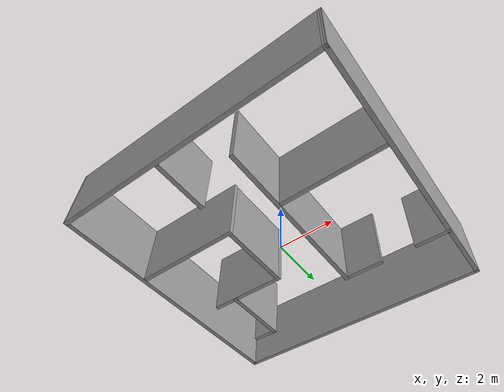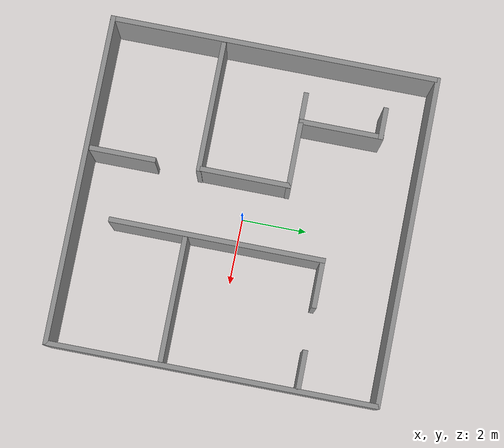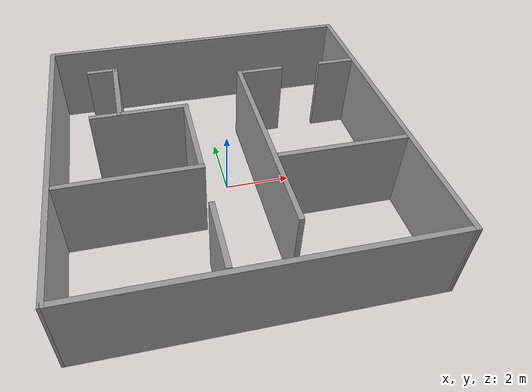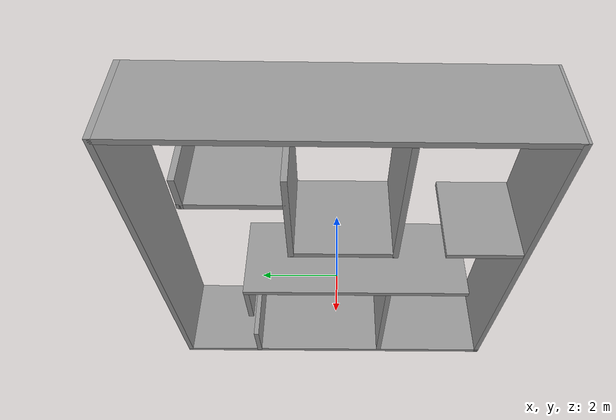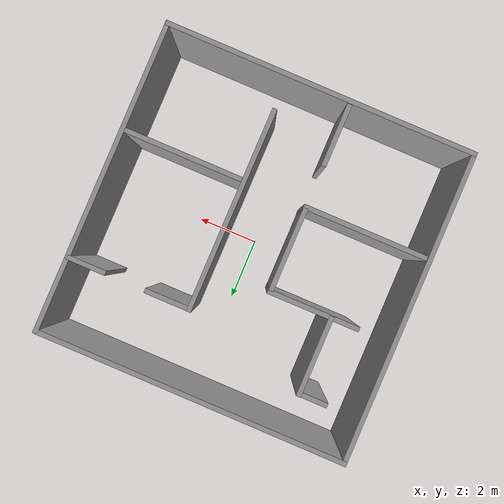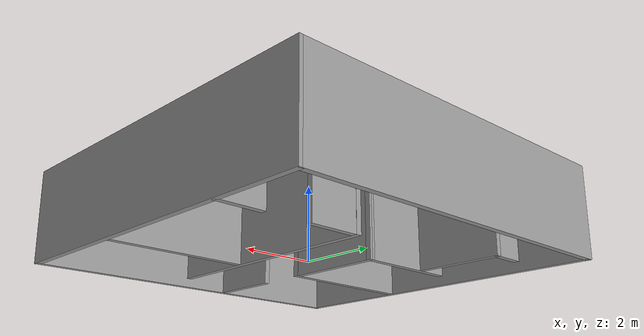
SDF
<?xml version='1.0'?>
<sdf version='1.6'>
  <model name='simple_building_floor'>
    <pose frame=''>-0.026036 0.028702 0 0 -0 0</pose>
    <link name='Wall_11'>
      <collision name='Wall_11_Collision'>
        <geometry>
          <box>
            <size>6.5 0.15 2.5</size>
          </box>
        </geometry>
        <pose frame=''>0 0 1.25 0 -0 0</pose>
      </collision>
      <visual name='Wall_11_Visual'>
        <pose frame=''>0 0 1.25 0 -0 0</pose>
        <geometry>
          <box>
            <size>6.5 0.15 2.5</size>
          </box>
        </geometry>
        <material>
          <script>
            <uri>file://media/materials/scripts/gazebo.material</uri>
            <name>Gazebo/Grey</name>
          </script>
          <ambient>1 1 1 1</ambient>
        </material>
        <meta>
          <layer>0</layer>
        </meta>
      </visual>
      <pose frame=''>1.01204 -0.592703 0 0 0 -1.5708</pose>
    </link>
    <link name='Wall_13'>
      <collision name='Wall_13_Collision'>
        <geometry>
          <box>
            <size>2.9142 0.15 2.5</size>
          </box>
        </geometry>
        <pose frame=''>0 0 1.25 0 -0 0</pose>
      </collision>
      <visual name='Wall_13_Visual'>
        <pose frame=''>0 0 1.25 0 -0 0</pose>
        <geometry>
          <box>
            <size>2.9142 0.15 2.5</size>
          </box>
        </geometry>
        <material>
          <script>
            <uri>file://media/materials/scripts/gazebo.material</uri>
            <name>Gazebo/Grey</name>
          </script>
          <ambient>1 1 1 1</ambient>
        </material>
        <meta>
          <layer>0</layer>
        </meta>
      </visual>
      <pose frame=''>-2.35206 1.17551 0 0 -0 0.002425</pose>
    </link>
    <link name='Wall_16'>
      <collision name='Wall_16_Collision'>
        <geometry>
          <box>
            <size>2.543 0.15 2.5</size>
          </box>
        </geometry>
        <pose frame=''>0 0 1.25 0 -0 0</pose>
      </collision>
      <visual name='Wall_16_Visual'>
        <pose frame=''>0 0 1.25 0 -0 0</pose>
        <geometry>
          <box>
            <size>2.543 0.15 2.5</size>
          </box>
        </geometry>
        <material>
          <script>
            <uri>file://media/materials/scripts/gazebo.material</uri>
            <name>Gazebo/Grey</name>
          </script>
          <ambient>1 1 1 1</ambient>
        </material>
        <meta>
          <layer>0</layer>
        </meta>
      </visual>
      <pose frame=''>-2.92396 2.3948 0 0 -0 1.5708</pose>
    </link>
    <link name='Wall_17'>
      <collision name='Wall_17_Collision'>
        <geometry>
          <box>
            <size>0.965568 0.15 2.5</size>
          </box>
        </geometry>
        <pose frame=''>0 0 1.25 0 -0 0</pose>
      </collision>
      <visual name='Wall_17_Visual'>
        <pose frame=''>0 0 1.25 0 -0 0</pose>
        <geometry>
          <box>
            <size>0.965568 0.15 2.5</size>
          </box>
        </geometry>
        <material>
          <script>
            <uri>file://media/materials/scripts/gazebo.material</uri>
            <name>Gazebo/Grey</name>
          </script>
          <ambient>1 1 1 1</ambient>
        </material>
        <meta>
          <layer>0</layer>
        </meta>
      </visual>
      <pose frame=''>-3.33196 3.5826 0 0 -0 3.14159</pose>
    </link>
    <link name='Wall_22'>
      <collision name='Wall_22_Collision'>
        <geometry>
          <box>
            <size>2 0.15 2.5</size>
          </box>
        </geometry>
        <pose frame=''>0 0 1.25 0 -0 0</pose>
      </collision>
      <visual name='Wall_22_Visual'>
        <pose frame=''>0 0 1.25 0 -0 0</pose>
        <geometry>
          <box>
            <size>2 0.15 2.5</size>
          </box>
        </geometry>
        <material>
          <script>
            <uri>file://media/materials/scripts/gazebo.material</uri>
            <name>Gazebo/Grey</name>
          </script>
          <ambient>1 1 1 1</ambient>
        </material>
        <meta>
          <layer>0</layer>
        </meta>
      </visual>
      <pose frame=''>-0.97044 -3.8307 0 0 0 -1.5708</pose>
    </link>
    <link name='Wall_25'>
      <collision name='Wall_25_Collision'>
        <geometry>
          <box>
            <size>3.75 0.15 2.5</size>
          </box>
        </geometry>
        <pose frame=''>0 0 1.25 0 -0 0</pose>
      </collision>
      <visual name='Wall_25_Visual'>
        <pose frame=''>0 0 1.25 0 -0 0</pose>
        <geometry>
          <box>
            <size>3.75 0.15 2.5</size>
          </box>
        </geometry>
        <material>
          <script>
            <uri>file://media/materials/scripts/gazebo.material</uri>
            <name>Gazebo/Grey</name>
          </script>
          <ambient>1 1 1 1</ambient>
        </material>
        <meta>
          <layer>0</layer>
        </meta>
      </visual>
      <pose frame=''>2.96632 -1.52988 0 0 -0 0</pose>
    </link>
    <link name='Wall_28'>
      <collision name='Wall_28_Collision'>
        <geometry>
          <box>
            <size>1.35 0.15 2.5</size>
          </box>
        </geometry>
        <pose frame=''>0 0 1.25 0 -0 0</pose>
      </collision>
      <visual name='Wall_28_Visual'>
        <pose frame=''>0 0 1.25 0 -0 0</pose>
        <geometry>
          <box>
            <size>1.35 0.15 2.5</size>
          </box>
        </geometry>
        <material>
          <script>
            <uri>file://media/materials/scripts/gazebo.material</uri>
            <name>Gazebo/Grey</name>
          </script>
          <ambient>1 1 1 1</ambient>
        </material>
        <meta>
          <layer>0</layer>
        </meta>
      </visual>
      <pose frame=''>1.76175 2.57806 0 0 -0 3.14159</pose>
    </link>
    <link name='Wall_30'>
      <collision name='Wall_30_Collision'>
        <geometry>
          <box>
            <size>1.25 0.15 2.5</size>
          </box>
        </geometry>
        <pose frame=''>0 0 1.25 0 -0 0</pose>
      </collision>
      <visual name='Wall_30_Visual'>
        <pose frame=''>0 0 1.25 0 -0 0</pose>
        <geometry>
          <box>
            <size>1.25 0.15 2.5</size>
          </box>
        </geometry>
        <material>
          <script>
            <uri>file://media/materials/scripts/gazebo.material</uri>
            <name>Gazebo/Grey</name>
          </script>
          <ambient>1 1 1 1</ambient>
        </material>
        <meta>
          <layer>0</layer>
        </meta>
      </visual>
      <pose frame=''>4.31226 2.57149 0 0 -0 0</pose>
    </link>
    <link name='Wall_33'>
      <collision name='Wall_33_Collision'>
        <geometry>
          <box>
            <size>3.95 0.15 2.5</size>
          </box>
        </geometry>
        <pose frame=''>0 0 1.25 0 -0 0</pose>
      </collision>
      <visual name='Wall_33_Visual'>
        <pose frame=''>0 0 1.25 0 -0 0</pose>
        <geometry>
          <box>
            <size>3.95 0.15 2.5</size>
          </box>
        </geometry>
        <material>
          <script>
            <uri>file://media/materials/scripts/gazebo.material</uri>
            <name>Gazebo/Grey</name>
          </script>
          <ambient>1 1 1 1</ambient>
        </material>
        <meta>
          <layer>0</layer>
        </meta>
      </visual>
      <pose frame=''>-2.86367 -1.52533 0 0 -0 0</pose>
    </link>
    <link name='Wall_35'>
      <collision name='Wall_35_Collision'>
        <geometry>
          <box>
            <size>10 0.15 2.5</size>
          </box>
        </geometry>
        <pose frame=''>0 0 1.25 0 -0 0</pose>
      </collision>
      <visual name='Wall_35_Visual'>
        <pose frame=''>0 0 1.25 0 -0 0</pose>
        <geometry>
          <box>
            <size>10 0.15 2.5</size>
          </box>
        </geometry>
        <material>
          <script>
            <uri>file://media/materials/scripts/gazebo.material</uri>
            <name>Gazebo/Grey</name>
          </script>
          <ambient>1 1 1 1</ambient>
        </material>
        <meta>
          <layer>0</layer>
        </meta>
      </visual>
      <pose frame=''>-4.92496 0.010298 0 0 0 -1.5708</pose>
    </link>
    <link name='Wall_36'>
      <collision name='Wall_36_Collision'>
        <geometry>
          <box>
            <size>9.97984 0.15 2.5</size>
          </box>
        </geometry>
        <pose frame=''>0 0 1.25 0 -0 0</pose>
      </collision>
      <visual name='Wall_36_Visual'>
        <pose frame=''>0 0 1.25 0 -0 0</pose>
        <geometry>
          <box>
            <size>9.97984 0.15 2.5</size>
          </box>
        </geometry>
        <material>
          <script>
            <uri>file://media/materials/scripts/gazebo.material</uri>
            <name>Gazebo/Grey</name>
          </script>
          <ambient>1 1 1 1</ambient>
        </material>
        <meta>
          <layer>0</layer>
        </meta>
      </visual>
      <pose frame=''>-0.010055 -4.92491 0 0 0 -0.002077</pose>
    </link>
    <link name='Wall_37'>
      <collision name='Wall_37_Collision'>
        <geometry>
          <box>
            <size>10.0202 0.15 2.5</size>
          </box>
        </geometry>
        <pose frame=''>0 0 1.25 0 -0 0</pose>
      </collision>
      <visual name='Wall_37_Visual'>
        <pose frame=''>0 0 1.25 0 -0 0</pose>
        <geometry>
          <box>
            <size>10.0202 0.15 2.5</size>
          </box>
        </geometry>
        <material>
          <script>
            <uri>file://media/materials/scripts/gazebo.material</uri>
            <name>Gazebo/Grey</name>
          </script>
          <ambient>1 1 1 1</ambient>
        </material>
        <meta>
          <layer>0</layer>
        </meta>
      </visual>
      <pose frame=''>4.91491 -5.9e-05 0 0 -0 1.57283</pose>
    </link>
    <link name='Wall_38'>
      <collision name='Wall_38_Collision'>
        <geometry>
          <box>
            <size>9.9597 0.15 2.5</size>
          </box>
        </geometry>
        <pose frame=''>0 0 1.25 0 -0 0</pose>
      </collision>
      <visual name='Wall_38_Visual'>
        <pose frame=''>0 0 1.25 0 -0 0</pose>
        <geometry>
          <box>
            <size>9.9597 0.15 2.5</size>
          </box>
        </geometry>
        <material>
          <script>
            <uri>file://media/materials/scripts/gazebo.material</uri>
            <name>Gazebo/Grey</name>
          </script>
          <ambient>1 1 1 1</ambient>
        </material>
        <meta>
          <layer>0</layer>
        </meta>
      </visual>
      <pose frame=''>-0.020112 4.93515 0 0 -0 3.14156</pose>
    </link>
    <link name='Wall_9'>
      <collision name='Wall_9_Collision'>
        <geometry>
          <box>
            <size>2.75 0.15 2.5</size>
          </box>
        </geometry>
        <pose frame=''>0 0 1.25 0 -0 0</pose>
      </collision>
      <visual name='Wall_9_Visual'>
        <pose frame=''>0 0 1.25 0 -0 0</pose>
        <geometry>
          <box>
            <size>2.75 0.15 2.5</size>
          </box>
        </geometry>
        <material>
          <script>
            <uri>file://media/materials/scripts/gazebo.material</uri>
            <name>Gazebo/Grey</name>
          </script>
          <ambient>1 1 1 1</ambient>
        </material>
        <meta>
          <layer>0</layer>
        </meta>
      </visual>
      <pose frame=''>-0.977525 -0.121141 0 0 0 -1.5708</pose>
    </link>
    <static>1</static>
  </model>
</sdf>
